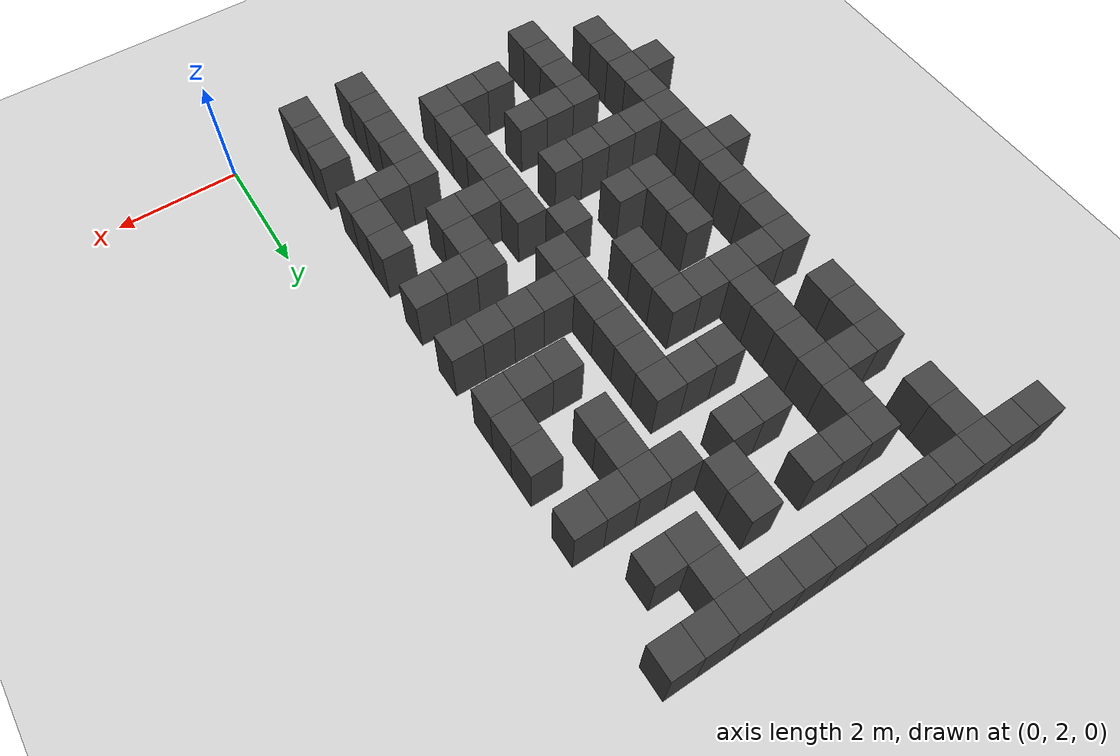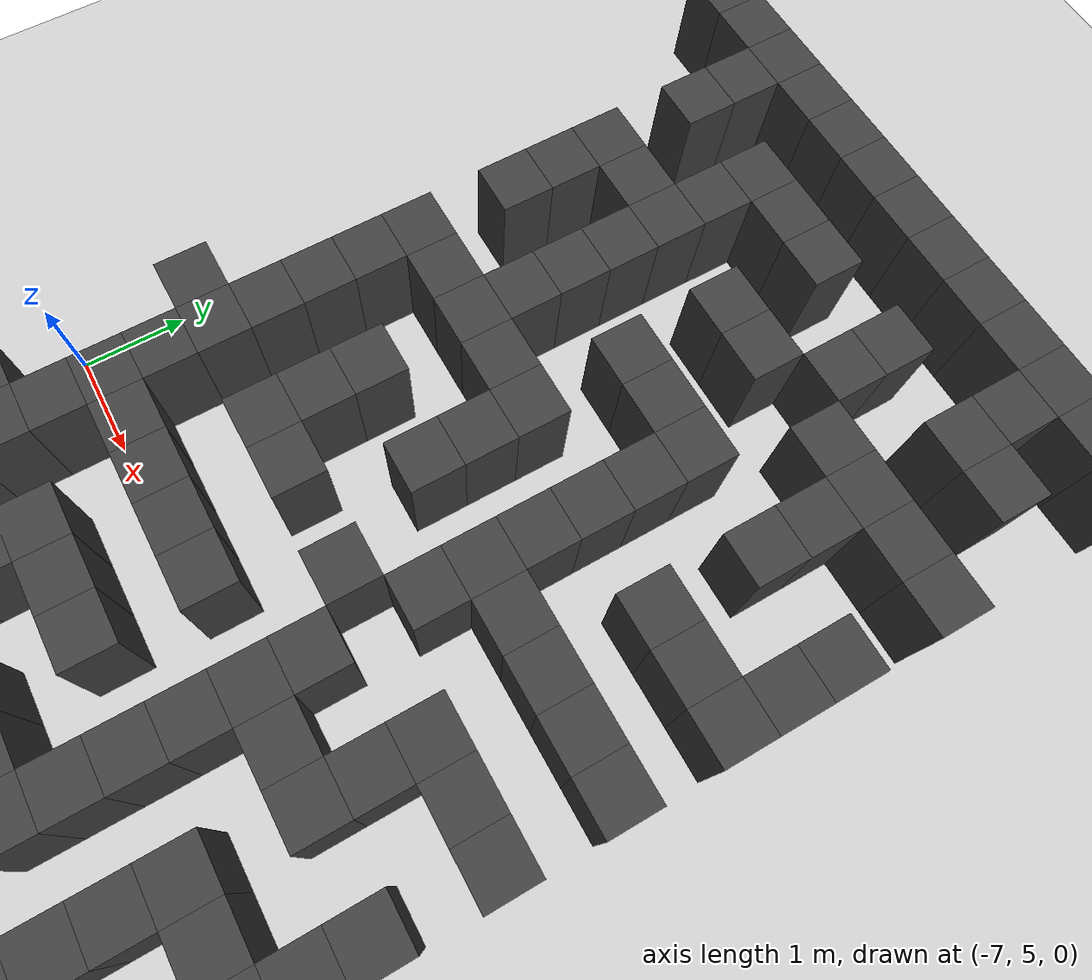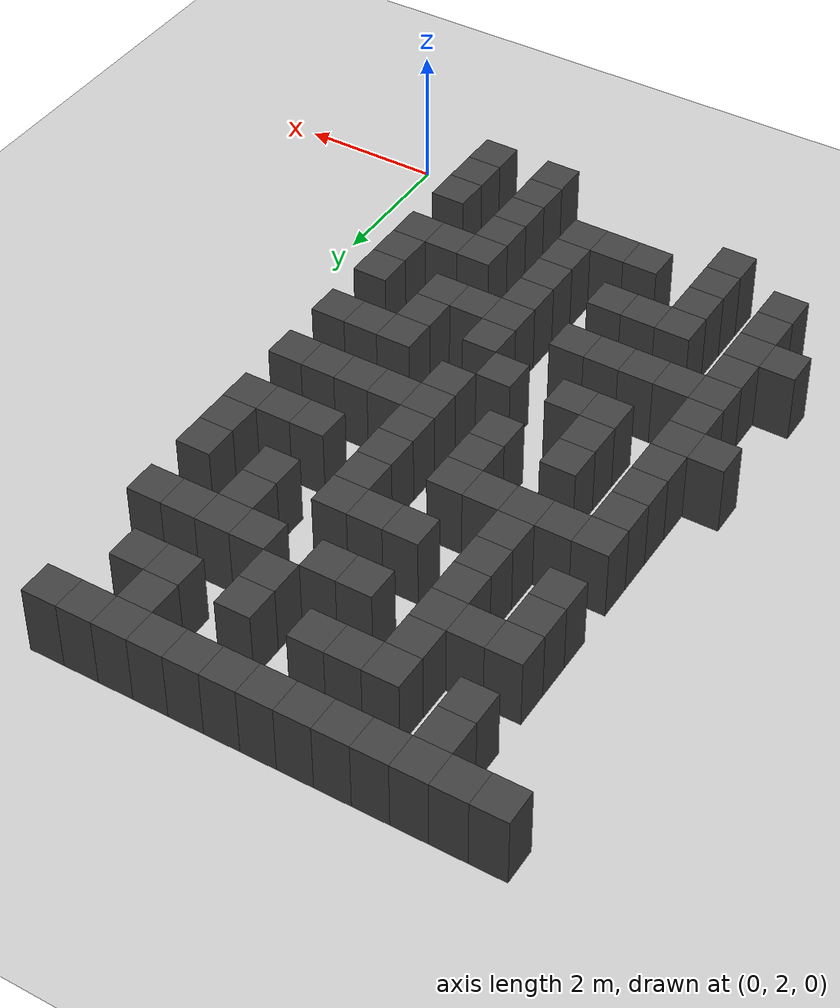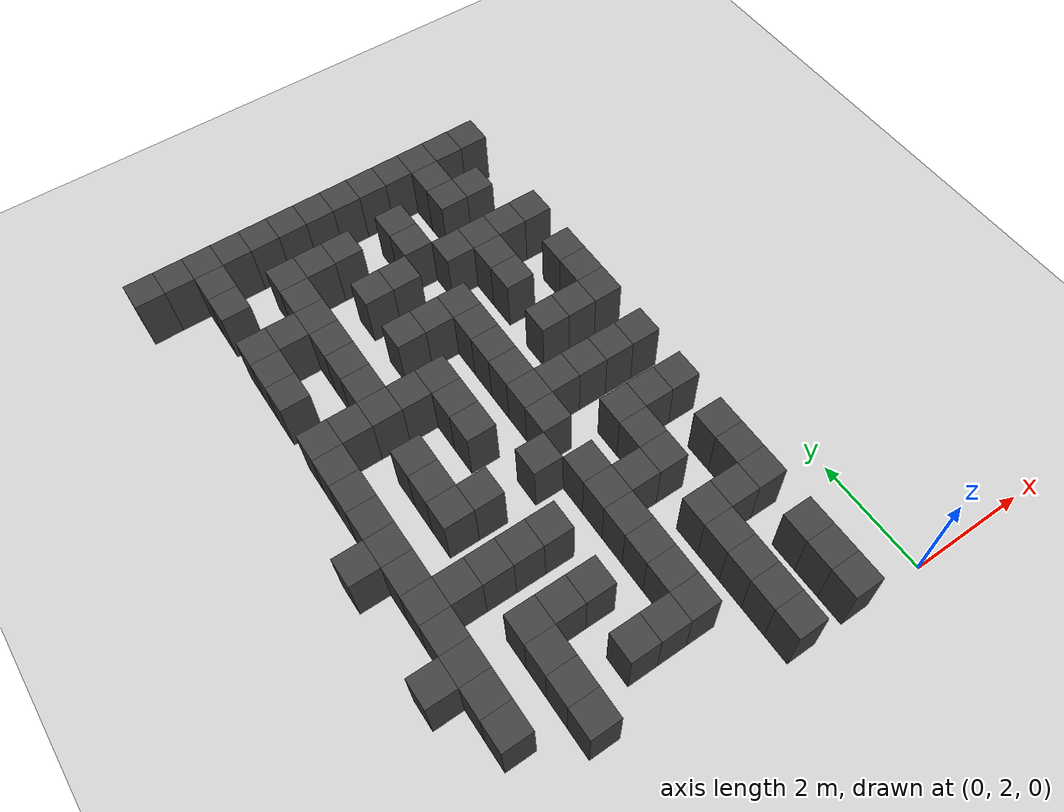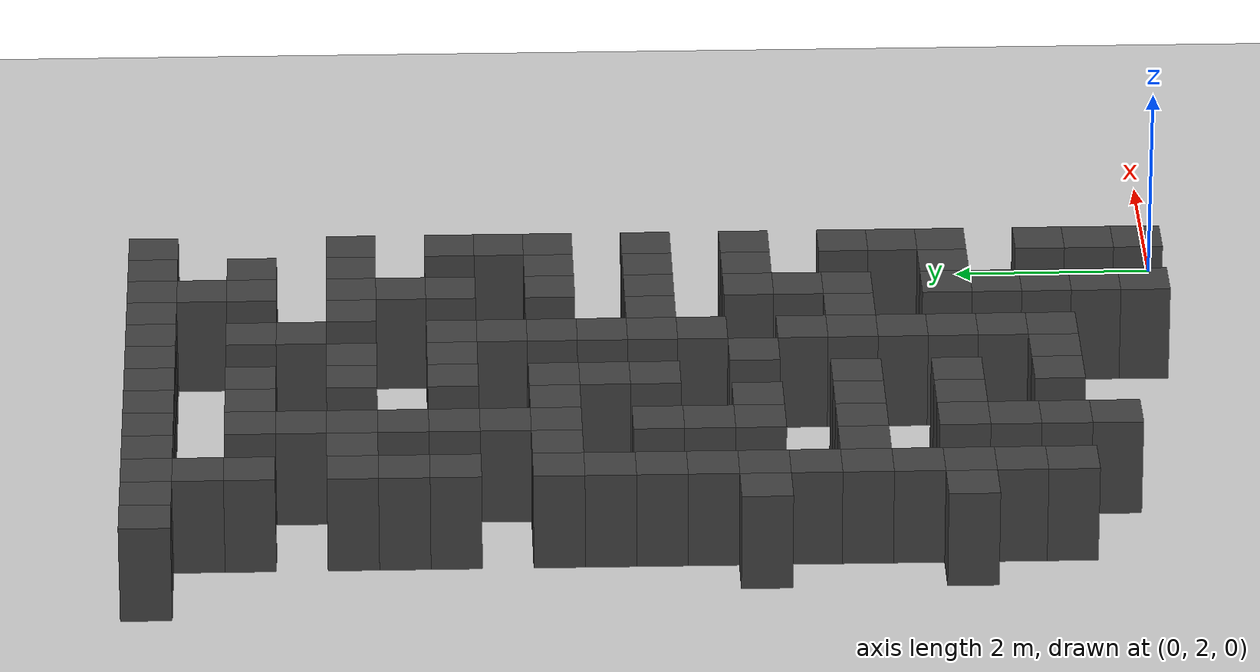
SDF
<sdf version="1.7">
 <world name="map_18347">
  <model name="ground_plane">
   <static>true</static>
   <link name="link">
    <collision name="collision">
     <geometry><plane><normal>0 0 1</normal><size>200 200</size></plane></geometry>
    </collision>
    <visual name="visual">
     <geometry><plane><normal>0 0 1</normal><size>200 200</size></plane></geometry>
     <material><ambient>0.8 0.8 0.8 1</ambient><diffuse>0.8 0.8 0.8 1</diffuse></material>
    </visual>
   </link>
  </model>
  <model name="maze_environment">
   <static>true</static>
   <link name="wall_10">
    <pose>-7.250 12.250 0.500 0 0 0</pose>
    <collision name="col"><geometry><box><size>0.5 0.5 1.0</size></box></geometry></collision>
    <visual name="vis">
     <geometry><box><size>0.5 0.5 1.0</size></box></geometry>
     <material><ambient>0.15 0.15 0.15 1</ambient><diffuse>0.25 0.25 0.25 1</diffuse></material>
    </visual>
   </link>
   <link name="wall_11">
    <pose>-6.750 12.250 0.500 0 0 0</pose>
    <collision name="col"><geometry><box><size>0.5 0.5 1.0</size></box></geometry></collision>
    <visual name="vis">
     <geometry><box><size>0.5 0.5 1.0</size></box></geometry>
     <material><ambient>0.15 0.15 0.15 1</ambient><diffuse>0.25 0.25 0.25 1</diffuse></material>
    </visual>
   </link>
   <link name="wall_12">
    <pose>-6.250 12.250 0.500 0 0 0</pose>
    <collision name="col"><geometry><box><size>0.5 0.5 1.0</size></box></geometry></collision>
    <visual name="vis">
     <geometry><box><size>0.5 0.5 1.0</size></box></geometry>
     <material><ambient>0.15 0.15 0.15 1</ambient><diffuse>0.25 0.25 0.25 1</diffuse></material>
    </visual>
   </link>
   <link name="wall_13">
    <pose>-5.750 12.250 0.500 0 0 0</pose>
    <collision name="col"><geometry><box><size>0.5 0.5 1.0</size></box></geometry></collision>
    <visual name="vis">
     <geometry><box><size>0.5 0.5 1.0</size></box></geometry>
     <material><ambient>0.15 0.15 0.15 1</ambient><diffuse>0.25 0.25 0.25 1</diffuse></material>
    </visual>
   </link>
   <link name="wall_14">
    <pose>-5.250 12.250 0.500 0 0 0</pose>
    <collision name="col"><geometry><box><size>0.5 0.5 1.0</size></box></geometry></collision>
    <visual name="vis">
     <geometry><box><size>0.5 0.5 1.0</size></box></geometry>
     <material><ambient>0.15 0.15 0.15 1</ambient><diffuse>0.25 0.25 0.25 1</diffuse></material>
    </visual>
   </link>
   <link name="wall_15">
    <pose>-4.750 12.250 0.500 0 0 0</pose>
    <collision name="col"><geometry><box><size>0.5 0.5 1.0</size></box></geometry></collision>
    <visual name="vis">
     <geometry><box><size>0.5 0.5 1.0</size></box></geometry>
     <material><ambient>0.15 0.15 0.15 1</ambient><diffuse>0.25 0.25 0.25 1</diffuse></material>
    </visual>
   </link>
   <link name="wall_16">
    <pose>-4.250 12.250 0.500 0 0 0</pose>
    <collision name="col"><geometry><box><size>0.5 0.5 1.0</size></box></geometry></collision>
    <visual name="vis">
     <geometry><box><size>0.5 0.5 1.0</size></box></geometry>
     <material><ambient>0.15 0.15 0.15 1</ambient><diffuse>0.25 0.25 0.25 1</diffuse></material>
    </visual>
   </link>
   <link name="wall_17">
    <pose>-3.750 12.250 0.500 0 0 0</pose>
    <collision name="col"><geometry><box><size>0.5 0.5 1.0</size></box></geometry></collision>
    <visual name="vis">
     <geometry><box><size>0.5 0.5 1.0</size></box></geometry>
     <material><ambient>0.15 0.15 0.15 1</ambient><diffuse>0.25 0.25 0.25 1</diffuse></material>
    </visual>
   </link>
   <link name="wall_18">
    <pose>-3.250 12.250 0.500 0 0 0</pose>
    <collision name="col"><geometry><box><size>0.5 0.5 1.0</size></box></geometry></collision>
    <visual name="vis">
     <geometry><box><size>0.5 0.5 1.0</size></box></geometry>
     <material><ambient>0.15 0.15 0.15 1</ambient><diffuse>0.25 0.25 0.25 1</diffuse></material>
    </visual>
   </link>
   <link name="wall_19">
    <pose>-2.750 12.250 0.500 0 0 0</pose>
    <collision name="col"><geometry><box><size>0.5 0.5 1.0</size></box></geometry></collision>
    <visual name="vis">
     <geometry><box><size>0.5 0.5 1.0</size></box></geometry>
     <material><ambient>0.15 0.15 0.15 1</ambient><diffuse>0.25 0.25 0.25 1</diffuse></material>
    </visual>
   </link>
   <link name="wall_20">
    <pose>-2.250 12.250 0.500 0 0 0</pose>
    <collision name="col"><geometry><box><size>0.5 0.5 1.0</size></box></geometry></collision>
    <visual name="vis">
     <geometry><box><size>0.5 0.5 1.0</size></box></geometry>
     <material><ambient>0.15 0.15 0.15 1</ambient><diffuse>0.25 0.25 0.25 1</diffuse></material>
    </visual>
   </link>
   <link name="wall_21">
    <pose>-1.750 12.250 0.500 0 0 0</pose>
    <collision name="col"><geometry><box><size>0.5 0.5 1.0</size></box></geometry></collision>
    <visual name="vis">
     <geometry><box><size>0.5 0.5 1.0</size></box></geometry>
     <material><ambient>0.15 0.15 0.15 1</ambient><diffuse>0.25 0.25 0.25 1</diffuse></material>
    </visual>
   </link>
   <link name="wall_22">
    <pose>-1.250 12.250 0.500 0 0 0</pose>
    <collision name="col"><geometry><box><size>0.5 0.5 1.0</size></box></geometry></collision>
    <visual name="vis">
     <geometry><box><size>0.5 0.5 1.0</size></box></geometry>
     <material><ambient>0.15 0.15 0.15 1</ambient><diffuse>0.25 0.25 0.25 1</diffuse></material>
    </visual>
   </link>
   <link name="wall_52">
    <pose>-6.250 11.750 0.500 0 0 0</pose>
    <collision name="col"><geometry><box><size>0.5 0.5 1.0</size></box></geometry></collision>
    <visual name="vis">
     <geometry><box><size>0.5 0.5 1.0</size></box></geometry>
     <material><ambient>0.15 0.15 0.15 1</ambient><diffuse>0.25 0.25 0.25 1</diffuse></material>
    </visual>
   </link>
   <link name="wall_53">
    <pose>-2.250 11.750 0.500 0 0 0</pose>
    <collision name="col"><geometry><box><size>0.5 0.5 1.0</size></box></geometry></collision>
    <visual name="vis">
     <geometry><box><size>0.5 0.5 1.0</size></box></geometry>
     <material><ambient>0.15 0.15 0.15 1</ambient><diffuse>0.25 0.25 0.25 1</diffuse></material>
    </visual>
   </link>
   <link name="wall_68">
    <pose>-6.250 11.250 0.500 0 0 0</pose>
    <collision name="col"><geometry><box><size>0.5 0.5 1.0</size></box></geometry></collision>
    <visual name="vis">
     <geometry><box><size>0.5 0.5 1.0</size></box></geometry>
     <material><ambient>0.15 0.15 0.15 1</ambient><diffuse>0.25 0.25 0.25 1</diffuse></material>
    </visual>
   </link>
   <link name="wall_69">
    <pose>-5.250 11.250 0.500 0 0 0</pose>
    <collision name="col"><geometry><box><size>0.5 0.5 1.0</size></box></geometry></collision>
    <visual name="vis">
     <geometry><box><size>0.5 0.5 1.0</size></box></geometry>
     <material><ambient>0.15 0.15 0.15 1</ambient><diffuse>0.25 0.25 0.25 1</diffuse></material>
    </visual>
   </link>
   <link name="wall_70">
    <pose>-4.750 11.250 0.500 0 0 0</pose>
    <collision name="col"><geometry><box><size>0.5 0.5 1.0</size></box></geometry></collision>
    <visual name="vis">
     <geometry><box><size>0.5 0.5 1.0</size></box></geometry>
     <material><ambient>0.15 0.15 0.15 1</ambient><diffuse>0.25 0.25 0.25 1</diffuse></material>
    </visual>
   </link>
   <link name="wall_71">
    <pose>-4.250 11.250 0.500 0 0 0</pose>
    <collision name="col"><geometry><box><size>0.5 0.5 1.0</size></box></geometry></collision>
    <visual name="vis">
     <geometry><box><size>0.5 0.5 1.0</size></box></geometry>
     <material><ambient>0.15 0.15 0.15 1</ambient><diffuse>0.25 0.25 0.25 1</diffuse></material>
    </visual>
   </link>
   <link name="wall_72">
    <pose>-3.250 11.250 0.500 0 0 0</pose>
    <collision name="col"><geometry><box><size>0.5 0.5 1.0</size></box></geometry></collision>
    <visual name="vis">
     <geometry><box><size>0.5 0.5 1.0</size></box></geometry>
     <material><ambient>0.15 0.15 0.15 1</ambient><diffuse>0.25 0.25 0.25 1</diffuse></material>
    </visual>
   </link>
   <link name="wall_73">
    <pose>-2.250 11.250 0.500 0 0 0</pose>
    <collision name="col"><geometry><box><size>0.5 0.5 1.0</size></box></geometry></collision>
    <visual name="vis">
     <geometry><box><size>0.5 0.5 1.0</size></box></geometry>
     <material><ambient>0.15 0.15 0.15 1</ambient><diffuse>0.25 0.25 0.25 1</diffuse></material>
    </visual>
   </link>
   <link name="wall_74">
    <pose>-1.750 11.250 0.500 0 0 0</pose>
    <collision name="col"><geometry><box><size>0.5 0.5 1.0</size></box></geometry></collision>
    <visual name="vis">
     <geometry><box><size>0.5 0.5 1.0</size></box></geometry>
     <material><ambient>0.15 0.15 0.15 1</ambient><diffuse>0.25 0.25 0.25 1</diffuse></material>
    </visual>
   </link>
   <link name="wall_97">
    <pose>-5.250 10.750 0.500 0 0 0</pose>
    <collision name="col"><geometry><box><size>0.5 0.5 1.0</size></box></geometry></collision>
    <visual name="vis">
     <geometry><box><size>0.5 0.5 1.0</size></box></geometry>
     <material><ambient>0.15 0.15 0.15 1</ambient><diffuse>0.25 0.25 0.25 1</diffuse></material>
    </visual>
   </link>
   <link name="wall_98">
    <pose>-3.250 10.750 0.500 0 0 0</pose>
    <collision name="col"><geometry><box><size>0.5 0.5 1.0</size></box></geometry></collision>
    <visual name="vis">
     <geometry><box><size>0.5 0.5 1.0</size></box></geometry>
     <material><ambient>0.15 0.15 0.15 1</ambient><diffuse>0.25 0.25 0.25 1</diffuse></material>
    </visual>
   </link>
   <link name="wall_115">
    <pose>-6.250 10.250 0.500 0 0 0</pose>
    <collision name="col"><geometry><box><size>0.5 0.5 1.0</size></box></geometry></collision>
    <visual name="vis">
     <geometry><box><size>0.5 0.5 1.0</size></box></geometry>
     <material><ambient>0.15 0.15 0.15 1</ambient><diffuse>0.25 0.25 0.25 1</diffuse></material>
    </visual>
   </link>
   <link name="wall_116">
    <pose>-5.750 10.250 0.500 0 0 0</pose>
    <collision name="col"><geometry><box><size>0.5 0.5 1.0</size></box></geometry></collision>
    <visual name="vis">
     <geometry><box><size>0.5 0.5 1.0</size></box></geometry>
     <material><ambient>0.15 0.15 0.15 1</ambient><diffuse>0.25 0.25 0.25 1</diffuse></material>
    </visual>
   </link>
   <link name="wall_117">
    <pose>-5.250 10.250 0.500 0 0 0</pose>
    <collision name="col"><geometry><box><size>0.5 0.5 1.0</size></box></geometry></collision>
    <visual name="vis">
     <geometry><box><size>0.5 0.5 1.0</size></box></geometry>
     <material><ambient>0.15 0.15 0.15 1</ambient><diffuse>0.25 0.25 0.25 1</diffuse></material>
    </visual>
   </link>
   <link name="wall_118">
    <pose>-4.250 10.250 0.500 0 0 0</pose>
    <collision name="col"><geometry><box><size>0.5 0.5 1.0</size></box></geometry></collision>
    <visual name="vis">
     <geometry><box><size>0.5 0.5 1.0</size></box></geometry>
     <material><ambient>0.15 0.15 0.15 1</ambient><diffuse>0.25 0.25 0.25 1</diffuse></material>
    </visual>
   </link>
   <link name="wall_119">
    <pose>-3.750 10.250 0.500 0 0 0</pose>
    <collision name="col"><geometry><box><size>0.5 0.5 1.0</size></box></geometry></collision>
    <visual name="vis">
     <geometry><box><size>0.5 0.5 1.0</size></box></geometry>
     <material><ambient>0.15 0.15 0.15 1</ambient><diffuse>0.25 0.25 0.25 1</diffuse></material>
    </visual>
   </link>
   <link name="wall_120">
    <pose>-2.750 10.250 0.500 0 0 0</pose>
    <collision name="col"><geometry><box><size>0.5 0.5 1.0</size></box></geometry></collision>
    <visual name="vis">
     <geometry><box><size>0.5 0.5 1.0</size></box></geometry>
     <material><ambient>0.15 0.15 0.15 1</ambient><diffuse>0.25 0.25 0.25 1</diffuse></material>
    </visual>
   </link>
   <link name="wall_121">
    <pose>-2.250 10.250 0.500 0 0 0</pose>
    <collision name="col"><geometry><box><size>0.5 0.5 1.0</size></box></geometry></collision>
    <visual name="vis">
     <geometry><box><size>0.5 0.5 1.0</size></box></geometry>
     <material><ambient>0.15 0.15 0.15 1</ambient><diffuse>0.25 0.25 0.25 1</diffuse></material>
    </visual>
   </link>
   <link name="wall_122">
    <pose>-1.750 10.250 0.500 0 0 0</pose>
    <collision name="col"><geometry><box><size>0.5 0.5 1.0</size></box></geometry></collision>
    <visual name="vis">
     <geometry><box><size>0.5 0.5 1.0</size></box></geometry>
     <material><ambient>0.15 0.15 0.15 1</ambient><diffuse>0.25 0.25 0.25 1</diffuse></material>
    </visual>
   </link>
   <link name="wall_123">
    <pose>-1.250 10.250 0.500 0 0 0</pose>
    <collision name="col"><geometry><box><size>0.5 0.5 1.0</size></box></geometry></collision>
    <visual name="vis">
     <geometry><box><size>0.5 0.5 1.0</size></box></geometry>
     <material><ambient>0.15 0.15 0.15 1</ambient><diffuse>0.25 0.25 0.25 1</diffuse></material>
    </visual>
   </link>
   <link name="wall_147">
    <pose>-6.250 9.750 0.500 0 0 0</pose>
    <collision name="col"><geometry><box><size>0.5 0.5 1.0</size></box></geometry></collision>
    <visual name="vis">
     <geometry><box><size>0.5 0.5 1.0</size></box></geometry>
     <material><ambient>0.15 0.15 0.15 1</ambient><diffuse>0.25 0.25 0.25 1</diffuse></material>
    </visual>
   </link>
   <link name="wall_148">
    <pose>-5.250 9.750 0.500 0 0 0</pose>
    <collision name="col"><geometry><box><size>0.5 0.5 1.0</size></box></geometry></collision>
    <visual name="vis">
     <geometry><box><size>0.5 0.5 1.0</size></box></geometry>
     <material><ambient>0.15 0.15 0.15 1</ambient><diffuse>0.25 0.25 0.25 1</diffuse></material>
    </visual>
   </link>
   <link name="wall_149">
    <pose>-2.250 9.750 0.500 0 0 0</pose>
    <collision name="col"><geometry><box><size>0.5 0.5 1.0</size></box></geometry></collision>
    <visual name="vis">
     <geometry><box><size>0.5 0.5 1.0</size></box></geometry>
     <material><ambient>0.15 0.15 0.15 1</ambient><diffuse>0.25 0.25 0.25 1</diffuse></material>
    </visual>
   </link>
   <link name="wall_168">
    <pose>-6.250 9.250 0.500 0 0 0</pose>
    <collision name="col"><geometry><box><size>0.5 0.5 1.0</size></box></geometry></collision>
    <visual name="vis">
     <geometry><box><size>0.5 0.5 1.0</size></box></geometry>
     <material><ambient>0.15 0.15 0.15 1</ambient><diffuse>0.25 0.25 0.25 1</diffuse></material>
    </visual>
   </link>
   <link name="wall_169">
    <pose>-5.250 9.250 0.500 0 0 0</pose>
    <collision name="col"><geometry><box><size>0.5 0.5 1.0</size></box></geometry></collision>
    <visual name="vis">
     <geometry><box><size>0.5 0.5 1.0</size></box></geometry>
     <material><ambient>0.15 0.15 0.15 1</ambient><diffuse>0.25 0.25 0.25 1</diffuse></material>
    </visual>
   </link>
   <link name="wall_170">
    <pose>-4.250 9.250 0.500 0 0 0</pose>
    <collision name="col"><geometry><box><size>0.5 0.5 1.0</size></box></geometry></collision>
    <visual name="vis">
     <geometry><box><size>0.5 0.5 1.0</size></box></geometry>
     <material><ambient>0.15 0.15 0.15 1</ambient><diffuse>0.25 0.25 0.25 1</diffuse></material>
    </visual>
   </link>
   <link name="wall_171">
    <pose>-3.750 9.250 0.500 0 0 0</pose>
    <collision name="col"><geometry><box><size>0.5 0.5 1.0</size></box></geometry></collision>
    <visual name="vis">
     <geometry><box><size>0.5 0.5 1.0</size></box></geometry>
     <material><ambient>0.15 0.15 0.15 1</ambient><diffuse>0.25 0.25 0.25 1</diffuse></material>
    </visual>
   </link>
   <link name="wall_172">
    <pose>-3.250 9.250 0.500 0 0 0</pose>
    <collision name="col"><geometry><box><size>0.5 0.5 1.0</size></box></geometry></collision>
    <visual name="vis">
     <geometry><box><size>0.5 0.5 1.0</size></box></geometry>
     <material><ambient>0.15 0.15 0.15 1</ambient><diffuse>0.25 0.25 0.25 1</diffuse></material>
    </visual>
   </link>
   <link name="wall_173">
    <pose>-2.250 9.250 0.500 0 0 0</pose>
    <collision name="col"><geometry><box><size>0.5 0.5 1.0</size></box></geometry></collision>
    <visual name="vis">
     <geometry><box><size>0.5 0.5 1.0</size></box></geometry>
     <material><ambient>0.15 0.15 0.15 1</ambient><diffuse>0.25 0.25 0.25 1</diffuse></material>
    </visual>
   </link>
   <link name="wall_174">
    <pose>-1.250 9.250 0.500 0 0 0</pose>
    <collision name="col"><geometry><box><size>0.5 0.5 1.0</size></box></geometry></collision>
    <visual name="vis">
     <geometry><box><size>0.5 0.5 1.0</size></box></geometry>
     <material><ambient>0.15 0.15 0.15 1</ambient><diffuse>0.25 0.25 0.25 1</diffuse></material>
    </visual>
   </link>
   <link name="wall_194">
    <pose>-5.250 8.750 0.500 0 0 0</pose>
    <collision name="col"><geometry><box><size>0.5 0.5 1.0</size></box></geometry></collision>
    <visual name="vis">
     <geometry><box><size>0.5 0.5 1.0</size></box></geometry>
     <material><ambient>0.15 0.15 0.15 1</ambient><diffuse>0.25 0.25 0.25 1</diffuse></material>
    </visual>
   </link>
   <link name="wall_195">
    <pose>-3.250 8.750 0.500 0 0 0</pose>
    <collision name="col"><geometry><box><size>0.5 0.5 1.0</size></box></geometry></collision>
    <visual name="vis">
     <geometry><box><size>0.5 0.5 1.0</size></box></geometry>
     <material><ambient>0.15 0.15 0.15 1</ambient><diffuse>0.25 0.25 0.25 1</diffuse></material>
    </visual>
   </link>
   <link name="wall_196">
    <pose>-1.250 8.750 0.500 0 0 0</pose>
    <collision name="col"><geometry><box><size>0.5 0.5 1.0</size></box></geometry></collision>
    <visual name="vis">
     <geometry><box><size>0.5 0.5 1.0</size></box></geometry>
     <material><ambient>0.15 0.15 0.15 1</ambient><diffuse>0.25 0.25 0.25 1</diffuse></material>
    </visual>
   </link>
   <link name="wall_212">
    <pose>-6.250 8.250 0.500 0 0 0</pose>
    <collision name="col"><geometry><box><size>0.5 0.5 1.0</size></box></geometry></collision>
    <visual name="vis">
     <geometry><box><size>0.5 0.5 1.0</size></box></geometry>
     <material><ambient>0.15 0.15 0.15 1</ambient><diffuse>0.25 0.25 0.25 1</diffuse></material>
    </visual>
   </link>
   <link name="wall_213">
    <pose>-5.750 8.250 0.500 0 0 0</pose>
    <collision name="col"><geometry><box><size>0.5 0.5 1.0</size></box></geometry></collision>
    <visual name="vis">
     <geometry><box><size>0.5 0.5 1.0</size></box></geometry>
     <material><ambient>0.15 0.15 0.15 1</ambient><diffuse>0.25 0.25 0.25 1</diffuse></material>
    </visual>
   </link>
   <link name="wall_214">
    <pose>-5.250 8.250 0.500 0 0 0</pose>
    <collision name="col"><geometry><box><size>0.5 0.5 1.0</size></box></geometry></collision>
    <visual name="vis">
     <geometry><box><size>0.5 0.5 1.0</size></box></geometry>
     <material><ambient>0.15 0.15 0.15 1</ambient><diffuse>0.25 0.25 0.25 1</diffuse></material>
    </visual>
   </link>
   <link name="wall_215">
    <pose>-4.750 8.250 0.500 0 0 0</pose>
    <collision name="col"><geometry><box><size>0.5 0.5 1.0</size></box></geometry></collision>
    <visual name="vis">
     <geometry><box><size>0.5 0.5 1.0</size></box></geometry>
     <material><ambient>0.15 0.15 0.15 1</ambient><diffuse>0.25 0.25 0.25 1</diffuse></material>
    </visual>
   </link>
   <link name="wall_216">
    <pose>-4.250 8.250 0.500 0 0 0</pose>
    <collision name="col"><geometry><box><size>0.5 0.5 1.0</size></box></geometry></collision>
    <visual name="vis">
     <geometry><box><size>0.5 0.5 1.0</size></box></geometry>
     <material><ambient>0.15 0.15 0.15 1</ambient><diffuse>0.25 0.25 0.25 1</diffuse></material>
    </visual>
   </link>
   <link name="wall_217">
    <pose>-3.250 8.250 0.500 0 0 0</pose>
    <collision name="col"><geometry><box><size>0.5 0.5 1.0</size></box></geometry></collision>
    <visual name="vis">
     <geometry><box><size>0.5 0.5 1.0</size></box></geometry>
     <material><ambient>0.15 0.15 0.15 1</ambient><diffuse>0.25 0.25 0.25 1</diffuse></material>
    </visual>
   </link>
   <link name="wall_218">
    <pose>-2.250 8.250 0.500 0 0 0</pose>
    <collision name="col"><geometry><box><size>0.5 0.5 1.0</size></box></geometry></collision>
    <visual name="vis">
     <geometry><box><size>0.5 0.5 1.0</size></box></geometry>
     <material><ambient>0.15 0.15 0.15 1</ambient><diffuse>0.25 0.25 0.25 1</diffuse></material>
    </visual>
   </link>
   <link name="wall_219">
    <pose>-1.750 8.250 0.500 0 0 0</pose>
    <collision name="col"><geometry><box><size>0.5 0.5 1.0</size></box></geometry></collision>
    <visual name="vis">
     <geometry><box><size>0.5 0.5 1.0</size></box></geometry>
     <material><ambient>0.15 0.15 0.15 1</ambient><diffuse>0.25 0.25 0.25 1</diffuse></material>
    </visual>
   </link>
   <link name="wall_220">
    <pose>-1.250 8.250 0.500 0 0 0</pose>
    <collision name="col"><geometry><box><size>0.5 0.5 1.0</size></box></geometry></collision>
    <visual name="vis">
     <geometry><box><size>0.5 0.5 1.0</size></box></geometry>
     <material><ambient>0.15 0.15 0.15 1</ambient><diffuse>0.25 0.25 0.25 1</diffuse></material>
    </visual>
   </link>
   <link name="wall_246">
    <pose>-6.250 7.750 0.500 0 0 0</pose>
    <collision name="col"><geometry><box><size>0.5 0.5 1.0</size></box></geometry></collision>
    <visual name="vis">
     <geometry><box><size>0.5 0.5 1.0</size></box></geometry>
     <material><ambient>0.15 0.15 0.15 1</ambient><diffuse>0.25 0.25 0.25 1</diffuse></material>
    </visual>
   </link>
   <link name="wall_247">
    <pose>-4.250 7.750 0.500 0 0 0</pose>
    <collision name="col"><geometry><box><size>0.5 0.5 1.0</size></box></geometry></collision>
    <visual name="vis">
     <geometry><box><size>0.5 0.5 1.0</size></box></geometry>
     <material><ambient>0.15 0.15 0.15 1</ambient><diffuse>0.25 0.25 0.25 1</diffuse></material>
    </visual>
   </link>
   <link name="wall_248">
    <pose>-3.250 7.750 0.500 0 0 0</pose>
    <collision name="col"><geometry><box><size>0.5 0.5 1.0</size></box></geometry></collision>
    <visual name="vis">
     <geometry><box><size>0.5 0.5 1.0</size></box></geometry>
     <material><ambient>0.15 0.15 0.15 1</ambient><diffuse>0.25 0.25 0.25 1</diffuse></material>
    </visual>
   </link>
   <link name="wall_264">
    <pose>-6.250 7.250 0.500 0 0 0</pose>
    <collision name="col"><geometry><box><size>0.5 0.5 1.0</size></box></geometry></collision>
    <visual name="vis">
     <geometry><box><size>0.5 0.5 1.0</size></box></geometry>
     <material><ambient>0.15 0.15 0.15 1</ambient><diffuse>0.25 0.25 0.25 1</diffuse></material>
    </visual>
   </link>
   <link name="wall_265">
    <pose>-5.250 7.250 0.500 0 0 0</pose>
    <collision name="col"><geometry><box><size>0.5 0.5 1.0</size></box></geometry></collision>
    <visual name="vis">
     <geometry><box><size>0.5 0.5 1.0</size></box></geometry>
     <material><ambient>0.15 0.15 0.15 1</ambient><diffuse>0.25 0.25 0.25 1</diffuse></material>
    </visual>
   </link>
   <link name="wall_266">
    <pose>-4.250 7.250 0.500 0 0 0</pose>
    <collision name="col"><geometry><box><size>0.5 0.5 1.0</size></box></geometry></collision>
    <visual name="vis">
     <geometry><box><size>0.5 0.5 1.0</size></box></geometry>
     <material><ambient>0.15 0.15 0.15 1</ambient><diffuse>0.25 0.25 0.25 1</diffuse></material>
    </visual>
   </link>
   <link name="wall_267">
    <pose>-3.250 7.250 0.500 0 0 0</pose>
    <collision name="col"><geometry><box><size>0.5 0.5 1.0</size></box></geometry></collision>
    <visual name="vis">
     <geometry><box><size>0.5 0.5 1.0</size></box></geometry>
     <material><ambient>0.15 0.15 0.15 1</ambient><diffuse>0.25 0.25 0.25 1</diffuse></material>
    </visual>
   </link>
   <link name="wall_268">
    <pose>-2.750 7.250 0.500 0 0 0</pose>
    <collision name="col"><geometry><box><size>0.5 0.5 1.0</size></box></geometry></collision>
    <visual name="vis">
     <geometry><box><size>0.5 0.5 1.0</size></box></geometry>
     <material><ambient>0.15 0.15 0.15 1</ambient><diffuse>0.25 0.25 0.25 1</diffuse></material>
    </visual>
   </link>
   <link name="wall_269">
    <pose>-2.250 7.250 0.500 0 0 0</pose>
    <collision name="col"><geometry><box><size>0.5 0.5 1.0</size></box></geometry></collision>
    <visual name="vis">
     <geometry><box><size>0.5 0.5 1.0</size></box></geometry>
     <material><ambient>0.15 0.15 0.15 1</ambient><diffuse>0.25 0.25 0.25 1</diffuse></material>
    </visual>
   </link>
   <link name="wall_270">
    <pose>-1.750 7.250 0.500 0 0 0</pose>
    <collision name="col"><geometry><box><size>0.5 0.5 1.0</size></box></geometry></collision>
    <visual name="vis">
     <geometry><box><size>0.5 0.5 1.0</size></box></geometry>
     <material><ambient>0.15 0.15 0.15 1</ambient><diffuse>0.25 0.25 0.25 1</diffuse></material>
    </visual>
   </link>
   <link name="wall_271">
    <pose>-1.250 7.250 0.500 0 0 0</pose>
    <collision name="col"><geometry><box><size>0.5 0.5 1.0</size></box></geometry></collision>
    <visual name="vis">
     <geometry><box><size>0.5 0.5 1.0</size></box></geometry>
     <material><ambient>0.15 0.15 0.15 1</ambient><diffuse>0.25 0.25 0.25 1</diffuse></material>
    </visual>
   </link>
   <link name="wall_295">
    <pose>-6.250 6.750 0.500 0 0 0</pose>
    <collision name="col"><geometry><box><size>0.5 0.5 1.0</size></box></geometry></collision>
    <visual name="vis">
     <geometry><box><size>0.5 0.5 1.0</size></box></geometry>
     <material><ambient>0.15 0.15 0.15 1</ambient><diffuse>0.25 0.25 0.25 1</diffuse></material>
    </visual>
   </link>
   <link name="wall_296">
    <pose>-5.250 6.750 0.500 0 0 0</pose>
    <collision name="col"><geometry><box><size>0.5 0.5 1.0</size></box></geometry></collision>
    <visual name="vis">
     <geometry><box><size>0.5 0.5 1.0</size></box></geometry>
     <material><ambient>0.15 0.15 0.15 1</ambient><diffuse>0.25 0.25 0.25 1</diffuse></material>
    </visual>
   </link>
   <link name="wall_297">
    <pose>-3.250 6.750 0.500 0 0 0</pose>
    <collision name="col"><geometry><box><size>0.5 0.5 1.0</size></box></geometry></collision>
    <visual name="vis">
     <geometry><box><size>0.5 0.5 1.0</size></box></geometry>
     <material><ambient>0.15 0.15 0.15 1</ambient><diffuse>0.25 0.25 0.25 1</diffuse></material>
    </visual>
   </link>
   <link name="wall_311">
    <pose>-6.750 6.250 0.500 0 0 0</pose>
    <collision name="col"><geometry><box><size>0.5 0.5 1.0</size></box></geometry></collision>
    <visual name="vis">
     <geometry><box><size>0.5 0.5 1.0</size></box></geometry>
     <material><ambient>0.15 0.15 0.15 1</ambient><diffuse>0.25 0.25 0.25 1</diffuse></material>
    </visual>
   </link>
   <link name="wall_312">
    <pose>-6.250 6.250 0.500 0 0 0</pose>
    <collision name="col"><geometry><box><size>0.5 0.5 1.0</size></box></geometry></collision>
    <visual name="vis">
     <geometry><box><size>0.5 0.5 1.0</size></box></geometry>
     <material><ambient>0.15 0.15 0.15 1</ambient><diffuse>0.25 0.25 0.25 1</diffuse></material>
    </visual>
   </link>
   <link name="wall_313">
    <pose>-5.250 6.250 0.500 0 0 0</pose>
    <collision name="col"><geometry><box><size>0.5 0.5 1.0</size></box></geometry></collision>
    <visual name="vis">
     <geometry><box><size>0.5 0.5 1.0</size></box></geometry>
     <material><ambient>0.15 0.15 0.15 1</ambient><diffuse>0.25 0.25 0.25 1</diffuse></material>
    </visual>
   </link>
   <link name="wall_314">
    <pose>-4.750 6.250 0.500 0 0 0</pose>
    <collision name="col"><geometry><box><size>0.5 0.5 1.0</size></box></geometry></collision>
    <visual name="vis">
     <geometry><box><size>0.5 0.5 1.0</size></box></geometry>
     <material><ambient>0.15 0.15 0.15 1</ambient><diffuse>0.25 0.25 0.25 1</diffuse></material>
    </visual>
   </link>
   <link name="wall_315">
    <pose>-3.750 6.250 0.500 0 0 0</pose>
    <collision name="col"><geometry><box><size>0.5 0.5 1.0</size></box></geometry></collision>
    <visual name="vis">
     <geometry><box><size>0.5 0.5 1.0</size></box></geometry>
     <material><ambient>0.15 0.15 0.15 1</ambient><diffuse>0.25 0.25 0.25 1</diffuse></material>
    </visual>
   </link>
   <link name="wall_316">
    <pose>-2.250 6.250 0.500 0 0 0</pose>
    <collision name="col"><geometry><box><size>0.5 0.5 1.0</size></box></geometry></collision>
    <visual name="vis">
     <geometry><box><size>0.5 0.5 1.0</size></box></geometry>
     <material><ambient>0.15 0.15 0.15 1</ambient><diffuse>0.25 0.25 0.25 1</diffuse></material>
    </visual>
   </link>
   <link name="wall_317">
    <pose>-1.750 6.250 0.500 0 0 0</pose>
    <collision name="col"><geometry><box><size>0.5 0.5 1.0</size></box></geometry></collision>
    <visual name="vis">
     <geometry><box><size>0.5 0.5 1.0</size></box></geometry>
     <material><ambient>0.15 0.15 0.15 1</ambient><diffuse>0.25 0.25 0.25 1</diffuse></material>
    </visual>
   </link>
   <link name="wall_318">
    <pose>-1.250 6.250 0.500 0 0 0</pose>
    <collision name="col"><geometry><box><size>0.5 0.5 1.0</size></box></geometry></collision>
    <visual name="vis">
     <geometry><box><size>0.5 0.5 1.0</size></box></geometry>
     <material><ambient>0.15 0.15 0.15 1</ambient><diffuse>0.25 0.25 0.25 1</diffuse></material>
    </visual>
   </link>
   <link name="wall_343">
    <pose>-6.250 5.750 0.500 0 0 0</pose>
    <collision name="col"><geometry><box><size>0.5 0.5 1.0</size></box></geometry></collision>
    <visual name="vis">
     <geometry><box><size>0.5 0.5 1.0</size></box></geometry>
     <material><ambient>0.15 0.15 0.15 1</ambient><diffuse>0.25 0.25 0.25 1</diffuse></material>
    </visual>
   </link>
   <link name="wall_344">
    <pose>-3.250 5.750 0.500 0 0 0</pose>
    <collision name="col"><geometry><box><size>0.5 0.5 1.0</size></box></geometry></collision>
    <visual name="vis">
     <geometry><box><size>0.5 0.5 1.0</size></box></geometry>
     <material><ambient>0.15 0.15 0.15 1</ambient><diffuse>0.25 0.25 0.25 1</diffuse></material>
    </visual>
   </link>
   <link name="wall_345">
    <pose>-2.250 5.750 0.500 0 0 0</pose>
    <collision name="col"><geometry><box><size>0.5 0.5 1.0</size></box></geometry></collision>
    <visual name="vis">
     <geometry><box><size>0.5 0.5 1.0</size></box></geometry>
     <material><ambient>0.15 0.15 0.15 1</ambient><diffuse>0.25 0.25 0.25 1</diffuse></material>
    </visual>
   </link>
   <link name="wall_364">
    <pose>-6.250 5.250 0.500 0 0 0</pose>
    <collision name="col"><geometry><box><size>0.5 0.5 1.0</size></box></geometry></collision>
    <visual name="vis">
     <geometry><box><size>0.5 0.5 1.0</size></box></geometry>
     <material><ambient>0.15 0.15 0.15 1</ambient><diffuse>0.25 0.25 0.25 1</diffuse></material>
    </visual>
   </link>
   <link name="wall_365">
    <pose>-5.750 5.250 0.500 0 0 0</pose>
    <collision name="col"><geometry><box><size>0.5 0.5 1.0</size></box></geometry></collision>
    <visual name="vis">
     <geometry><box><size>0.5 0.5 1.0</size></box></geometry>
     <material><ambient>0.15 0.15 0.15 1</ambient><diffuse>0.25 0.25 0.25 1</diffuse></material>
    </visual>
   </link>
   <link name="wall_366">
    <pose>-5.250 5.250 0.500 0 0 0</pose>
    <collision name="col"><geometry><box><size>0.5 0.5 1.0</size></box></geometry></collision>
    <visual name="vis">
     <geometry><box><size>0.5 0.5 1.0</size></box></geometry>
     <material><ambient>0.15 0.15 0.15 1</ambient><diffuse>0.25 0.25 0.25 1</diffuse></material>
    </visual>
   </link>
   <link name="wall_367">
    <pose>-4.750 5.250 0.500 0 0 0</pose>
    <collision name="col"><geometry><box><size>0.5 0.5 1.0</size></box></geometry></collision>
    <visual name="vis">
     <geometry><box><size>0.5 0.5 1.0</size></box></geometry>
     <material><ambient>0.15 0.15 0.15 1</ambient><diffuse>0.25 0.25 0.25 1</diffuse></material>
    </visual>
   </link>
   <link name="wall_368">
    <pose>-4.250 5.250 0.500 0 0 0</pose>
    <collision name="col"><geometry><box><size>0.5 0.5 1.0</size></box></geometry></collision>
    <visual name="vis">
     <geometry><box><size>0.5 0.5 1.0</size></box></geometry>
     <material><ambient>0.15 0.15 0.15 1</ambient><diffuse>0.25 0.25 0.25 1</diffuse></material>
    </visual>
   </link>
   <link name="wall_369">
    <pose>-3.250 5.250 0.500 0 0 0</pose>
    <collision name="col"><geometry><box><size>0.5 0.5 1.0</size></box></geometry></collision>
    <visual name="vis">
     <geometry><box><size>0.5 0.5 1.0</size></box></geometry>
     <material><ambient>0.15 0.15 0.15 1</ambient><diffuse>0.25 0.25 0.25 1</diffuse></material>
    </visual>
   </link>
   <link name="wall_370">
    <pose>-2.750 5.250 0.500 0 0 0</pose>
    <collision name="col"><geometry><box><size>0.5 0.5 1.0</size></box></geometry></collision>
    <visual name="vis">
     <geometry><box><size>0.5 0.5 1.0</size></box></geometry>
     <material><ambient>0.15 0.15 0.15 1</ambient><diffuse>0.25 0.25 0.25 1</diffuse></material>
    </visual>
   </link>
   <link name="wall_371">
    <pose>-2.250 5.250 0.500 0 0 0</pose>
    <collision name="col"><geometry><box><size>0.5 0.5 1.0</size></box></geometry></collision>
    <visual name="vis">
     <geometry><box><size>0.5 0.5 1.0</size></box></geometry>
     <material><ambient>0.15 0.15 0.15 1</ambient><diffuse>0.25 0.25 0.25 1</diffuse></material>
    </visual>
   </link>
   <link name="wall_372">
    <pose>-1.250 5.250 0.500 0 0 0</pose>
    <collision name="col"><geometry><box><size>0.5 0.5 1.0</size></box></geometry></collision>
    <visual name="vis">
     <geometry><box><size>0.5 0.5 1.0</size></box></geometry>
     <material><ambient>0.15 0.15 0.15 1</ambient><diffuse>0.25 0.25 0.25 1</diffuse></material>
    </visual>
   </link>
   <link name="wall_393">
    <pose>-6.250 4.750 0.500 0 0 0</pose>
    <collision name="col"><geometry><box><size>0.5 0.5 1.0</size></box></geometry></collision>
    <visual name="vis">
     <geometry><box><size>0.5 0.5 1.0</size></box></geometry>
     <material><ambient>0.15 0.15 0.15 1</ambient><diffuse>0.25 0.25 0.25 1</diffuse></material>
    </visual>
   </link>
   <link name="wall_394">
    <pose>-3.250 4.750 0.500 0 0 0</pose>
    <collision name="col"><geometry><box><size>0.5 0.5 1.0</size></box></geometry></collision>
    <visual name="vis">
     <geometry><box><size>0.5 0.5 1.0</size></box></geometry>
     <material><ambient>0.15 0.15 0.15 1</ambient><diffuse>0.25 0.25 0.25 1</diffuse></material>
    </visual>
   </link>
   <link name="wall_395">
    <pose>-1.250 4.750 0.500 0 0 0</pose>
    <collision name="col"><geometry><box><size>0.5 0.5 1.0</size></box></geometry></collision>
    <visual name="vis">
     <geometry><box><size>0.5 0.5 1.0</size></box></geometry>
     <material><ambient>0.15 0.15 0.15 1</ambient><diffuse>0.25 0.25 0.25 1</diffuse></material>
    </visual>
   </link>
   <link name="wall_412">
    <pose>-6.750 4.250 0.500 0 0 0</pose>
    <collision name="col"><geometry><box><size>0.5 0.5 1.0</size></box></geometry></collision>
    <visual name="vis">
     <geometry><box><size>0.5 0.5 1.0</size></box></geometry>
     <material><ambient>0.15 0.15 0.15 1</ambient><diffuse>0.25 0.25 0.25 1</diffuse></material>
    </visual>
   </link>
   <link name="wall_413">
    <pose>-6.250 4.250 0.500 0 0 0</pose>
    <collision name="col"><geometry><box><size>0.5 0.5 1.0</size></box></geometry></collision>
    <visual name="vis">
     <geometry><box><size>0.5 0.5 1.0</size></box></geometry>
     <material><ambient>0.15 0.15 0.15 1</ambient><diffuse>0.25 0.25 0.25 1</diffuse></material>
    </visual>
   </link>
   <link name="wall_414">
    <pose>-5.250 4.250 0.500 0 0 0</pose>
    <collision name="col"><geometry><box><size>0.5 0.5 1.0</size></box></geometry></collision>
    <visual name="vis">
     <geometry><box><size>0.5 0.5 1.0</size></box></geometry>
     <material><ambient>0.15 0.15 0.15 1</ambient><diffuse>0.25 0.25 0.25 1</diffuse></material>
    </visual>
   </link>
   <link name="wall_415">
    <pose>-4.750 4.250 0.500 0 0 0</pose>
    <collision name="col"><geometry><box><size>0.5 0.5 1.0</size></box></geometry></collision>
    <visual name="vis">
     <geometry><box><size>0.5 0.5 1.0</size></box></geometry>
     <material><ambient>0.15 0.15 0.15 1</ambient><diffuse>0.25 0.25 0.25 1</diffuse></material>
    </visual>
   </link>
   <link name="wall_416">
    <pose>-4.250 4.250 0.500 0 0 0</pose>
    <collision name="col"><geometry><box><size>0.5 0.5 1.0</size></box></geometry></collision>
    <visual name="vis">
     <geometry><box><size>0.5 0.5 1.0</size></box></geometry>
     <material><ambient>0.15 0.15 0.15 1</ambient><diffuse>0.25 0.25 0.25 1</diffuse></material>
    </visual>
   </link>
   <link name="wall_417">
    <pose>-3.250 4.250 0.500 0 0 0</pose>
    <collision name="col"><geometry><box><size>0.5 0.5 1.0</size></box></geometry></collision>
    <visual name="vis">
     <geometry><box><size>0.5 0.5 1.0</size></box></geometry>
     <material><ambient>0.15 0.15 0.15 1</ambient><diffuse>0.25 0.25 0.25 1</diffuse></material>
    </visual>
   </link>
   <link name="wall_418">
    <pose>-2.250 4.250 0.500 0 0 0</pose>
    <collision name="col"><geometry><box><size>0.5 0.5 1.0</size></box></geometry></collision>
    <visual name="vis">
     <geometry><box><size>0.5 0.5 1.0</size></box></geometry>
     <material><ambient>0.15 0.15 0.15 1</ambient><diffuse>0.25 0.25 0.25 1</diffuse></material>
    </visual>
   </link>
   <link name="wall_419">
    <pose>-1.750 4.250 0.500 0 0 0</pose>
    <collision name="col"><geometry><box><size>0.5 0.5 1.0</size></box></geometry></collision>
    <visual name="vis">
     <geometry><box><size>0.5 0.5 1.0</size></box></geometry>
     <material><ambient>0.15 0.15 0.15 1</ambient><diffuse>0.25 0.25 0.25 1</diffuse></material>
    </visual>
   </link>
   <link name="wall_420">
    <pose>-1.250 4.250 0.500 0 0 0</pose>
    <collision name="col"><geometry><box><size>0.5 0.5 1.0</size></box></geometry></collision>
    <visual name="vis">
     <geometry><box><size>0.5 0.5 1.0</size></box></geometry>
     <material><ambient>0.15 0.15 0.15 1</ambient><diffuse>0.25 0.25 0.25 1</diffuse></material>
    </visual>
   </link>
   <link name="wall_446">
    <pose>-6.250 3.750 0.500 0 0 0</pose>
    <collision name="col"><geometry><box><size>0.5 0.5 1.0</size></box></geometry></collision>
    <visual name="vis">
     <geometry><box><size>0.5 0.5 1.0</size></box></geometry>
     <material><ambient>0.15 0.15 0.15 1</ambient><diffuse>0.25 0.25 0.25 1</diffuse></material>
    </visual>
   </link>
   <link name="wall_447">
    <pose>-5.250 3.750 0.500 0 0 0</pose>
    <collision name="col"><geometry><box><size>0.5 0.5 1.0</size></box></geometry></collision>
    <visual name="vis">
     <geometry><box><size>0.5 0.5 1.0</size></box></geometry>
     <material><ambient>0.15 0.15 0.15 1</ambient><diffuse>0.25 0.25 0.25 1</diffuse></material>
    </visual>
   </link>
   <link name="wall_448">
    <pose>-3.250 3.750 0.500 0 0 0</pose>
    <collision name="col"><geometry><box><size>0.5 0.5 1.0</size></box></geometry></collision>
    <visual name="vis">
     <geometry><box><size>0.5 0.5 1.0</size></box></geometry>
     <material><ambient>0.15 0.15 0.15 1</ambient><diffuse>0.25 0.25 0.25 1</diffuse></material>
    </visual>
   </link>
   <link name="wall_449">
    <pose>-2.250 3.750 0.500 0 0 0</pose>
    <collision name="col"><geometry><box><size>0.5 0.5 1.0</size></box></geometry></collision>
    <visual name="vis">
     <geometry><box><size>0.5 0.5 1.0</size></box></geometry>
     <material><ambient>0.15 0.15 0.15 1</ambient><diffuse>0.25 0.25 0.25 1</diffuse></material>
    </visual>
   </link>
   <link name="wall_465">
    <pose>-6.250 3.250 0.500 0 0 0</pose>
    <collision name="col"><geometry><box><size>0.5 0.5 1.0</size></box></geometry></collision>
    <visual name="vis">
     <geometry><box><size>0.5 0.5 1.0</size></box></geometry>
     <material><ambient>0.15 0.15 0.15 1</ambient><diffuse>0.25 0.25 0.25 1</diffuse></material>
    </visual>
   </link>
   <link name="wall_466">
    <pose>-5.250 3.250 0.500 0 0 0</pose>
    <collision name="col"><geometry><box><size>0.5 0.5 1.0</size></box></geometry></collision>
    <visual name="vis">
     <geometry><box><size>0.5 0.5 1.0</size></box></geometry>
     <material><ambient>0.15 0.15 0.15 1</ambient><diffuse>0.25 0.25 0.25 1</diffuse></material>
    </visual>
   </link>
   <link name="wall_467">
    <pose>-4.250 3.250 0.500 0 0 0</pose>
    <collision name="col"><geometry><box><size>0.5 0.5 1.0</size></box></geometry></collision>
    <visual name="vis">
     <geometry><box><size>0.5 0.5 1.0</size></box></geometry>
     <material><ambient>0.15 0.15 0.15 1</ambient><diffuse>0.25 0.25 0.25 1</diffuse></material>
    </visual>
   </link>
   <link name="wall_468">
    <pose>-3.750 3.250 0.500 0 0 0</pose>
    <collision name="col"><geometry><box><size>0.5 0.5 1.0</size></box></geometry></collision>
    <visual name="vis">
     <geometry><box><size>0.5 0.5 1.0</size></box></geometry>
     <material><ambient>0.15 0.15 0.15 1</ambient><diffuse>0.25 0.25 0.25 1</diffuse></material>
    </visual>
   </link>
   <link name="wall_469">
    <pose>-3.250 3.250 0.500 0 0 0</pose>
    <collision name="col"><geometry><box><size>0.5 0.5 1.0</size></box></geometry></collision>
    <visual name="vis">
     <geometry><box><size>0.5 0.5 1.0</size></box></geometry>
     <material><ambient>0.15 0.15 0.15 1</ambient><diffuse>0.25 0.25 0.25 1</diffuse></material>
    </visual>
   </link>
   <link name="wall_470">
    <pose>-2.250 3.250 0.500 0 0 0</pose>
    <collision name="col"><geometry><box><size>0.5 0.5 1.0</size></box></geometry></collision>
    <visual name="vis">
     <geometry><box><size>0.5 0.5 1.0</size></box></geometry>
     <material><ambient>0.15 0.15 0.15 1</ambient><diffuse>0.25 0.25 0.25 1</diffuse></material>
    </visual>
   </link>
   <link name="wall_471">
    <pose>-1.250 3.250 0.500 0 0 0</pose>
    <collision name="col"><geometry><box><size>0.5 0.5 1.0</size></box></geometry></collision>
    <visual name="vis">
     <geometry><box><size>0.5 0.5 1.0</size></box></geometry>
     <material><ambient>0.15 0.15 0.15 1</ambient><diffuse>0.25 0.25 0.25 1</diffuse></material>
    </visual>
   </link>
   <link name="wall_495">
    <pose>-5.250 2.750 0.500 0 0 0</pose>
    <collision name="col"><geometry><box><size>0.5 0.5 1.0</size></box></geometry></collision>
    <visual name="vis">
     <geometry><box><size>0.5 0.5 1.0</size></box></geometry>
     <material><ambient>0.15 0.15 0.15 1</ambient><diffuse>0.25 0.25 0.25 1</diffuse></material>
    </visual>
   </link>
   <link name="wall_496">
    <pose>-2.250 2.750 0.500 0 0 0</pose>
    <collision name="col"><geometry><box><size>0.5 0.5 1.0</size></box></geometry></collision>
    <visual name="vis">
     <geometry><box><size>0.5 0.5 1.0</size></box></geometry>
     <material><ambient>0.15 0.15 0.15 1</ambient><diffuse>0.25 0.25 0.25 1</diffuse></material>
    </visual>
   </link>
   <link name="wall_497">
    <pose>-1.250 2.750 0.500 0 0 0</pose>
    <collision name="col"><geometry><box><size>0.5 0.5 1.0</size></box></geometry></collision>
    <visual name="vis">
     <geometry><box><size>0.5 0.5 1.0</size></box></geometry>
     <material><ambient>0.15 0.15 0.15 1</ambient><diffuse>0.25 0.25 0.25 1</diffuse></material>
    </visual>
   </link>
   <link name="wall_523">
    <pose>-2.250 2.250 0.500 0 0 0</pose>
    <collision name="col"><geometry><box><size>0.5 0.5 1.0</size></box></geometry></collision>
    <visual name="vis">
     <geometry><box><size>0.5 0.5 1.0</size></box></geometry>
     <material><ambient>0.15 0.15 0.15 1</ambient><diffuse>0.25 0.25 0.25 1</diffuse></material>
    </visual>
   </link>
   <link name="wall_524">
    <pose>-1.250 2.250 0.500 0 0 0</pose>
    <collision name="col"><geometry><box><size>0.5 0.5 1.0</size></box></geometry></collision>
    <visual name="vis">
     <geometry><box><size>0.5 0.5 1.0</size></box></geometry>
     <material><ambient>0.15 0.15 0.15 1</ambient><diffuse>0.25 0.25 0.25 1</diffuse></material>
    </visual>
   </link>
  </model>
 </world>
</sdf>
